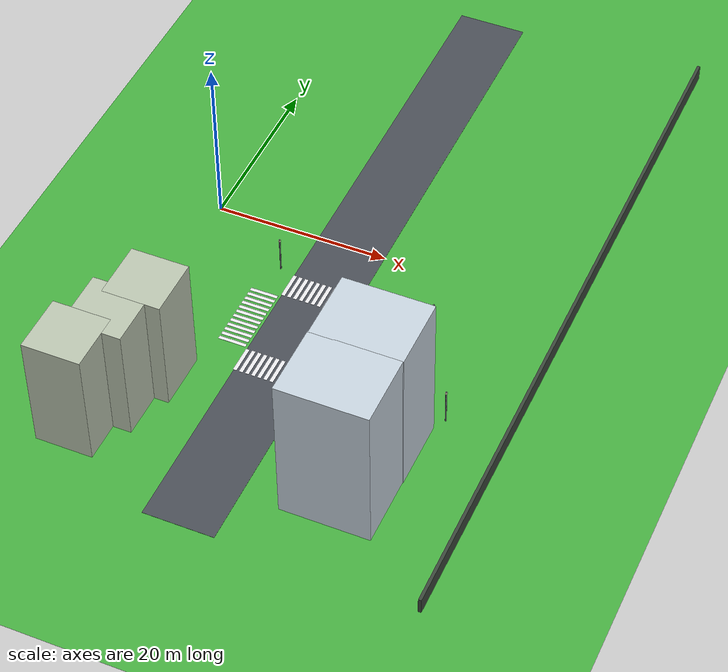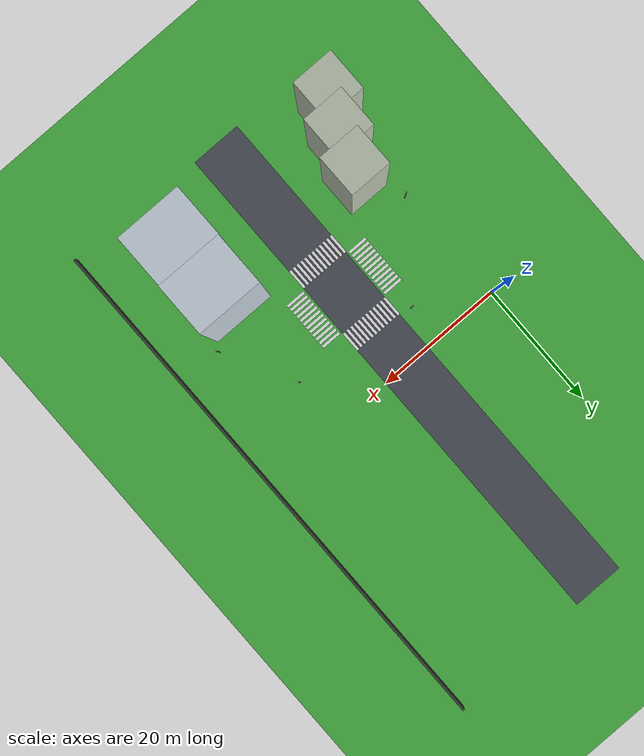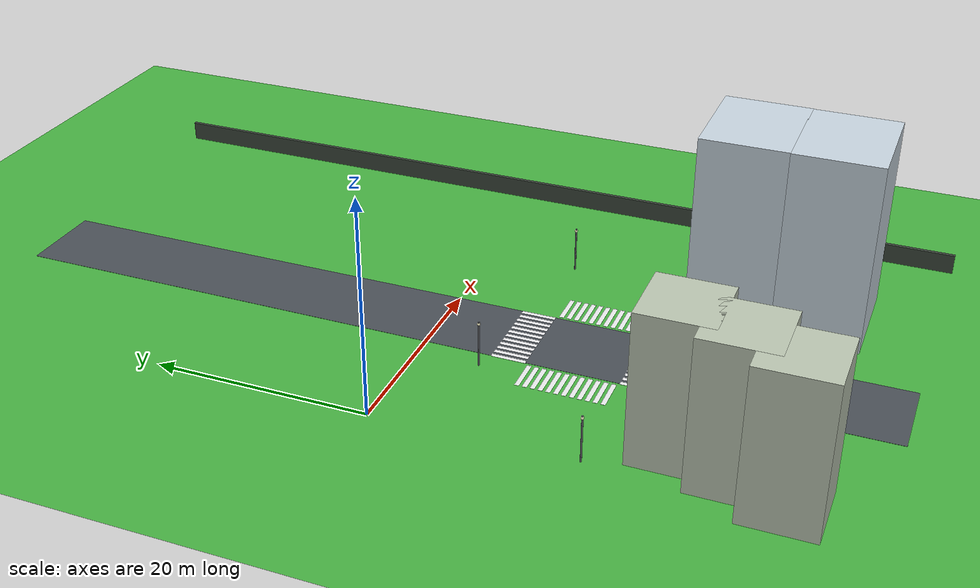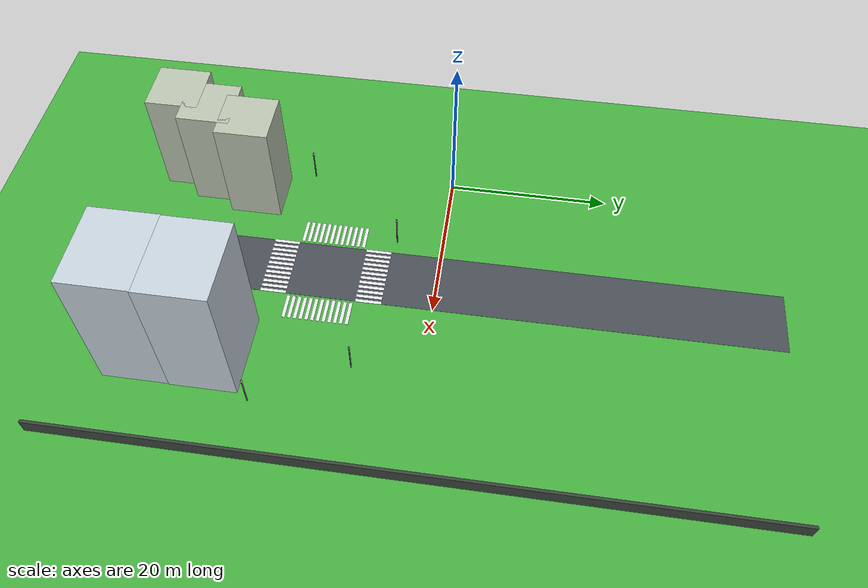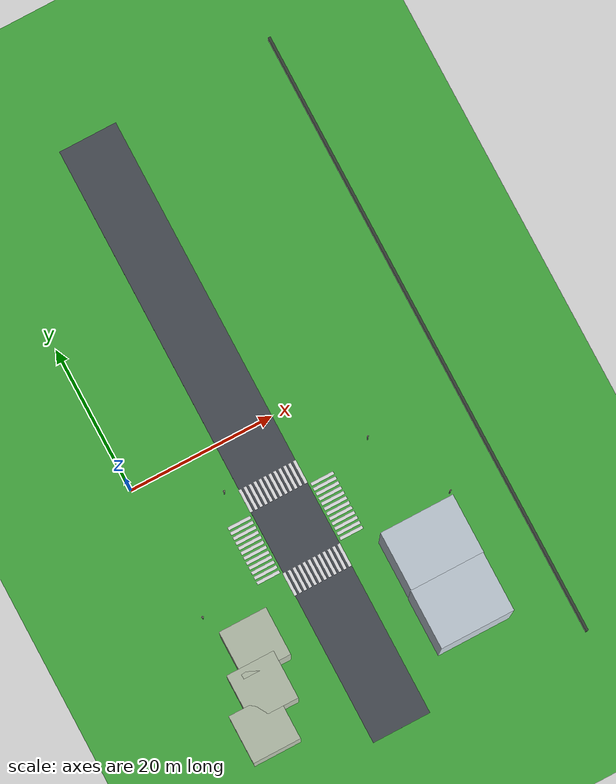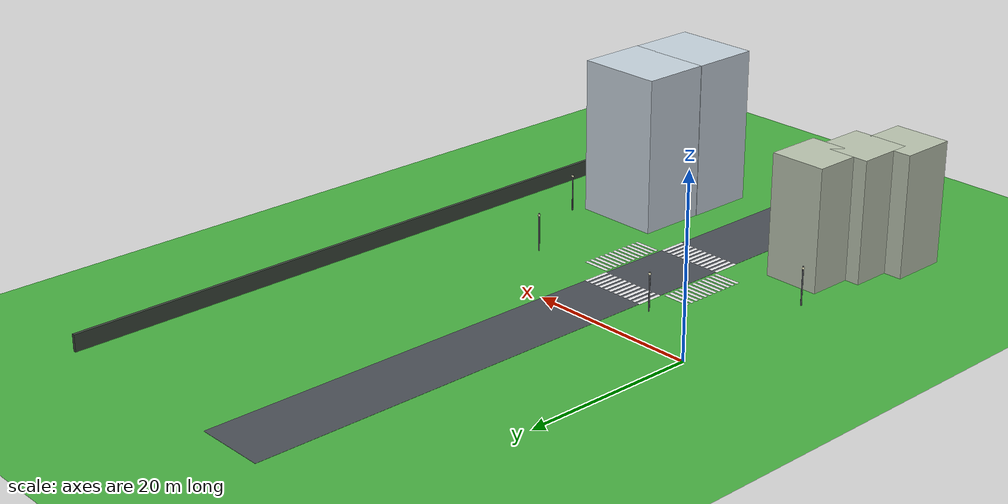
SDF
<sdf version="1.10">
 <world name="city_second">
  <model name="ground_plane">
   <static>true</static>
   <link name="link">
    <collision name="collision">
     <geometry><plane><normal>0 0 1</normal><size>300 300</size></plane></geometry>
    </collision>
    <visual name="visual">
     <geometry><plane><normal>0 0 1</normal><size>300 300</size></plane></geometry>
     <material>
      <ambient>0.280000001 0.689999998 0.25999999 1</ambient>
      <diffuse>0.280000001 0.689999998 0.25999999 1</diffuse>
      <specular>0.0299999993 0.0299999993 0.0299999993 1</specular>
     </material>
    </visual>
    <inertial>
     <mass>1</mass>
     <inertia><ixx>1</ixx><ixy>0</ixy><ixz>0</ixz><iyy>1</iyy><iyz>0</iyz><izz>1</izz></inertia>
    </inertial>
   </link>
  </model>
  <model name="road_v_2">
   <static>true</static>
   <pose>16 0 0.01 0 0 0</pose>
   <link name="link">
    <collision name="collision"><geometry><box><size>8 84 0.02</size></box></geometry></collision>
    <visual name="visual">
     <geometry><box><size>8 84 0.02</size></box></geometry>
     <material>
      <ambient>0.289999992 0.310000002 0.340000004 1</ambient>
      <diffuse>0.289999992 0.310000002 0.340000004 1</diffuse>
      <specular>0.0299999993 0.0299999993 0.0299999993 1</specular>
     </material>
    </visual>
    <inertial>
     <mass>1</mass>
     <inertia><ixx>1</ixx><ixy>0</ixy><ixz>0</ixz><iyy>1</iyy><iyz>0</iyz><izz>1</izz></inertia>
    </inertial>
   </link>
  </model>
  <model name="house_1_2">
   <static>true</static>
   <pose>4.5999999999999996 -24.800000000000001 7 0 0 0</pose>
   <link name="link">
    <collision name="collision"><geometry><box><size>6.5 6.5 14</size></box></geometry></collision>
    <visual name="visual">
     <geometry><box><size>6.5 6.5 14</size></box></geometry>
     <material>
      <ambient>0.730000019 0.769999981 0.689999998 1</ambient>
      <diffuse>0.730000019 0.769999981 0.689999998 1</diffuse>
      <specular>0.0299999993 0.0299999993 0.0299999993 1</specular>
     </material>
    </visual>
    <inertial>
     <mass>1</mass>
     <inertia><ixx>1</ixx><ixy>0</ixy><ixz>0</ixz><iyy>1</iyy><iyz>0</iyz><izz>1</izz></inertia>
    </inertial>
   </link>
  </model>
  <model name="house_1_3">
   <static>true</static>
   <pose>29.300000000000001 -24.300000000000001 9 0 0 0</pose>
   <link name="link">
    <collision name="collision"><geometry><box><size>10 8 18</size></box></geometry></collision>
    <visual name="visual">
     <geometry><box><size>10 8 18</size></box></geometry>
     <material>
      <ambient>0.779999971 0.829999983 0.870000005 1</ambient>
      <diffuse>0.779999971 0.829999983 0.870000005 1</diffuse>
      <specular>0.0299999993 0.0299999993 0.0299999993 1</specular>
     </material>
    </visual>
    <inertial>
     <mass>1</mass>
     <inertia><ixx>1</ixx><ixy>0</ixy><ixz>0</ixz><iyy>1</iyy><iyz>0</iyz><izz>1</izz></inertia>
    </inertial>
   </link>
  </model>
  <model name="fence_east">
   <static>true</static>
   <pose>42 0 0.94999999999999996 0 0 0</pose>
   <link name="link">
    <collision name="collision">
     <geometry><box><size>0.34999999999999998 84.5 1.8999999999999999</size></box></geometry>
    </collision>
    <visual name="visual">
     <geometry><box><size>0.34999999999999998 84.5 1.8999999999999999</size></box></geometry>
     <material>
      <ambient>0.230000004 0.270000011 0.230000004 1</ambient>
      <diffuse>0.230000004 0.270000011 0.230000004 1</diffuse>
      <specular>0.0299999993 0.0299999993 0.0299999993 1</specular>
     </material>
    </visual>
    <inertial>
     <mass>1</mass>
     <inertia><ixx>1</ixx><ixy>0</ixy><ixz>0</ixz><iyy>1</iyy><iyz>0</iyz><izz>1</izz></inertia>
    </inertial>
   </link>
  </model>
  <model name="house_1_2_1">
   <static>true</static>
   <pose>2.9261595536171914 -29.924278257436008 7 0 0 0</pose>
   <link name="link">
    <collision name="collision"><geometry><box><size>6.5 6.5 14</size></box></geometry></collision>
    <visual name="visual">
     <geometry><box><size>6.5 6.5 14</size></box></geometry>
     <material>
      <ambient>0.730000019 0.769999981 0.689999998 1</ambient>
      <diffuse>0.730000019 0.769999981 0.689999998 1</diffuse>
      <specular>0.0299999993 0.0299999993 0.0299999993 1</specular>
     </material>
    </visual>
    <inertial>
     <mass>1</mass>
     <inertia><ixx>1</ixx><ixy>0</ixy><ixz>0</ixz><iyy>1</iyy><iyz>0</iyz><izz>1</izz></inertia>
    </inertial>
   </link>
  </model>
  <model name="house_1_2_2">
   <static>true</static>
   <pose>0.84303424555227124 -34.43064882815753 7 0 0 0</pose>
   <link name="link">
    <collision name="collision"><geometry><box><size>6.5 6.5 14</size></box></geometry></collision>
    <visual name="visual">
     <geometry><box><size>6.5 6.5 14</size></box></geometry>
     <material>
      <ambient>0.730000019 0.769999981 0.689999998 1</ambient>
      <diffuse>0.730000019 0.769999981 0.689999998 1</diffuse>
      <specular>0.0299999993 0.0299999993 0.0299999993 1</specular>
     </material>
    </visual>
    <inertial>
     <mass>1</mass>
     <inertia><ixx>1</ixx><ixy>0</ixy><ixz>0</ixz><iyy>1</iyy><iyz>0</iyz><izz>1</izz></inertia>
    </inertial>
   </link>
  </model>
  <model name="house_1_3_1">
   <static>true</static>
   <pose>29.230521897791199 -32.22482438991532 9 0 0 0</pose>
   <link name="link">
    <collision name="collision"><geometry><box><size>10 8 18</size></box></geometry></collision>
    <visual name="visual">
     <geometry><box><size>10 8 18</size></box></geometry>
     <material>
      <ambient>0.779999971 0.829999983 0.870000005 1</ambient>
      <diffuse>0.779999971 0.829999983 0.870000005 1</diffuse>
      <specular>0.0299999993 0.0299999993 0.0299999993 1</specular>
     </material>
    </visual>
    <inertial>
     <mass>1</mass>
     <inertia><ixx>1</ixx><ixy>0</ixy><ixz>0</ixz><iyy>1</iyy><iyz>0</iyz><izz>1</izz></inertia>
    </inertial>
   </link>
  </model>
  <model name="crosswalk_v_2_1_east_5_3">
   <static>true</static>
   <pose>10.108439880763857 -13.809359029211334 0.017000000923871994 0 0 0</pose>
   <link name="stripe_1">
    <collision name="collision">
     <geometry><box><size>3.2000000000000002 0.41999999999999998 0.01</size></box></geometry>
    </collision>
    <visual name="visual">
     <geometry><box><size>3.2000000000000002 0.41999999999999998 0.01</size></box></geometry>
     <material>
      <ambient>0.920000017 0.920000017 0.930000007 1</ambient>
      <diffuse>0.920000017 0.920000017 0.930000007 1</diffuse>
      <specular>0.0299999993 0.0299999993 0.0299999993 1</specular>
     </material>
    </visual>
    <pose>0 -3.8500000000000001 0 0 0 0</pose>
    <inertial>
     <mass>1</mass>
     <inertia><ixx>1</ixx><ixy>0</ixy><ixz>0</ixz><iyy>1</iyy><iyz>0</iyz><izz>1</izz></inertia>
    </inertial>
   </link>
   <link name="stripe_2">
    <collision name="collision">
     <geometry><box><size>3.2000000000000002 0.41999999999999998 0.01</size></box></geometry>
    </collision>
    <visual name="visual">
     <geometry><box><size>3.2000000000000002 0.41999999999999998 0.01</size></box></geometry>
     <material>
      <ambient>0.920000017 0.920000017 0.930000007 1</ambient>
      <diffuse>0.920000017 0.920000017 0.930000007 1</diffuse>
      <specular>0.0299999993 0.0299999993 0.0299999993 1</specular>
     </material>
    </visual>
    <pose>0 -3.1500000000000004 0 0 0 0</pose>
    <inertial>
     <mass>1</mass>
     <inertia><ixx>1</ixx><ixy>0</ixy><ixz>0</ixz><iyy>1</iyy><iyz>0</iyz><izz>1</izz></inertia>
    </inertial>
   </link>
   <link name="stripe_3">
    <collision name="collision">
     <geometry><box><size>3.2000000000000002 0.41999999999999998 0.01</size></box></geometry>
    </collision>
    <visual name="visual">
     <geometry><box><size>3.2000000000000002 0.41999999999999998 0.01</size></box></geometry>
     <material>
      <ambient>0.920000017 0.920000017 0.930000007 1</ambient>
      <diffuse>0.920000017 0.920000017 0.930000007 1</diffuse>
      <specular>0.0299999993 0.0299999993 0.0299999993 1</specular>
     </material>
    </visual>
    <pose>0 -2.4499999999999975 0 0 0 0</pose>
    <inertial>
     <mass>1</mass>
     <inertia><ixx>1</ixx><ixy>0</ixy><ixz>0</ixz><iyy>1</iyy><iyz>0</iyz><izz>1</izz></inertia>
    </inertial>
   </link>
   <link name="stripe_4">
    <collision name="collision">
     <geometry><box><size>3.2000000000000002 0.41999999999999998 0.01</size></box></geometry>
    </collision>
    <visual name="visual">
     <geometry><box><size>3.2000000000000002 0.41999999999999998 0.01</size></box></geometry>
     <material>
      <ambient>0.920000017 0.920000017 0.930000007 1</ambient>
      <diffuse>0.920000017 0.920000017 0.930000007 1</diffuse>
      <specular>0.0299999993 0.0299999993 0.0299999993 1</specular>
     </material>
    </visual>
    <pose>0 -1.75 0 0 0 0</pose>
    <inertial>
     <mass>1</mass>
     <inertia><ixx>1</ixx><ixy>0</ixy><ixz>0</ixz><iyy>1</iyy><iyz>0</iyz><izz>1</izz></inertia>
    </inertial>
   </link>
   <link name="stripe_5">
    <collision name="collision">
     <geometry><box><size>3.2000000000000002 0.41999999999999998 0.01</size></box></geometry>
    </collision>
    <visual name="visual">
     <geometry><box><size>3.2000000000000002 0.41999999999999998 0.01</size></box></geometry>
     <material>
      <ambient>0.920000017 0.920000017 0.930000007 1</ambient>
      <diffuse>0.920000017 0.920000017 0.930000007 1</diffuse>
      <specular>0.0299999993 0.0299999993 0.0299999993 1</specular>
     </material>
    </visual>
    <pose>0 -1.0500000000000007 0 0 0 0</pose>
    <inertial>
     <mass>1</mass>
     <inertia><ixx>1</ixx><ixy>0</ixy><ixz>0</ixz><iyy>1</iyy><iyz>0</iyz><izz>1</izz></inertia>
    </inertial>
   </link>
   <link name="stripe_6">
    <collision name="collision">
     <geometry><box><size>3.2000000000000002 0.41999999999999998 0.01</size></box></geometry>
    </collision>
    <visual name="visual">
     <geometry><box><size>3.2000000000000002 0.41999999999999998 0.01</size></box></geometry>
     <material>
      <ambient>0.920000017 0.920000017 0.930000007 1</ambient>
      <diffuse>0.920000017 0.920000017 0.930000007 1</diffuse>
      <specular>0.0299999993 0.0299999993 0.0299999993 1</specular>
     </material>
    </visual>
    <pose>0 -0.34999999999999964 0 0 0 0</pose>
    <inertial>
     <mass>1</mass>
     <inertia><ixx>1</ixx><ixy>0</ixy><ixz>0</ixz><iyy>1</iyy><iyz>0</iyz><izz>1</izz></inertia>
    </inertial>
   </link>
   <link name="stripe_7">
    <collision name="collision">
     <geometry><box><size>3.2000000000000002 0.41999999999999998 0.01</size></box></geometry>
    </collision>
    <visual name="visual">
     <geometry><box><size>3.2000000000000002 0.41999999999999998 0.01</size></box></geometry>
     <material>
      <ambient>0.920000017 0.920000017 0.930000007 1</ambient>
      <diffuse>0.920000017 0.920000017 0.930000007 1</diffuse>
      <specular>0.0299999993 0.0299999993 0.0299999993 1</specular>
     </material>
    </visual>
    <pose>0 0.35000000000000142 0 0 0 0</pose>
    <inertial>
     <mass>1</mass>
     <inertia><ixx>1</ixx><ixy>0</ixy><ixz>0</ixz><iyy>1</iyy><iyz>0</iyz><izz>1</izz></inertia>
    </inertial>
   </link>
   <link name="stripe_8">
    <collision name="collision">
     <geometry><box><size>3.2000000000000002 0.41999999999999998 0.01</size></box></geometry>
    </collision>
    <visual name="visual">
     <geometry><box><size>3.2000000000000002 0.41999999999999998 0.01</size></box></geometry>
     <material>
      <ambient>0.920000017 0.920000017 0.930000007 1</ambient>
      <diffuse>0.920000017 0.920000017 0.930000007 1</diffuse>
      <specular>0.0299999993 0.0299999993 0.0299999993 1</specular>
     </material>
    </visual>
    <pose>0 1.0500000000000007 0 0 0 0</pose>
    <inertial>
     <mass>1</mass>
     <inertia><ixx>1</ixx><ixy>0</ixy><ixz>0</ixz><iyy>1</iyy><iyz>0</iyz><izz>1</izz></inertia>
    </inertial>
   </link>
   <link name="stripe_9">
    <collision name="collision">
     <geometry><box><size>3.2000000000000002 0.41999999999999998 0.01</size></box></geometry>
    </collision>
    <visual name="visual">
     <geometry><box><size>3.2000000000000002 0.41999999999999998 0.01</size></box></geometry>
     <material>
      <ambient>0.920000017 0.920000017 0.930000007 1</ambient>
      <diffuse>0.920000017 0.920000017 0.930000007 1</diffuse>
      <specular>0.0299999993 0.0299999993 0.0299999993 1</specular>
     </material>
    </visual>
    <pose>0 1.75 0 0 0 0</pose>
    <inertial>
     <mass>1</mass>
     <inertia><ixx>1</ixx><ixy>0</ixy><ixz>0</ixz><iyy>1</iyy><iyz>0</iyz><izz>1</izz></inertia>
    </inertial>
   </link>
   <link name="stripe_10">
    <collision name="collision">
     <geometry><box><size>3.2000000000000002 0.41999999999999998 0.01</size></box></geometry>
    </collision>
    <visual name="visual">
     <geometry><box><size>3.2000000000000002 0.41999999999999998 0.01</size></box></geometry>
     <material>
      <ambient>0.920000017 0.920000017 0.930000007 1</ambient>
      <diffuse>0.920000017 0.920000017 0.930000007 1</diffuse>
      <specular>0.0299999993 0.0299999993 0.0299999993 1</specular>
     </material>
    </visual>
    <pose>0 2.4499999999999993 0 0 0 0</pose>
    <inertial>
     <mass>1</mass>
     <inertia><ixx>1</ixx><ixy>0</ixy><ixz>0</ixz><iyy>1</iyy><iyz>0</iyz><izz>1</izz></inertia>
    </inertial>
   </link>
   <link name="stripe_11">
    <collision name="collision">
     <geometry><box><size>3.2000000000000002 0.41999999999999998 0.01</size></box></geometry>
    </collision>
    <visual name="visual">
     <geometry><box><size>3.2000000000000002 0.41999999999999998 0.01</size></box></geometry>
     <material>
      <ambient>0.920000017 0.920000017 0.930000007 1</ambient>
      <diffuse>0.920000017 0.920000017 0.930000007 1</diffuse>
      <specular>0.0299999993 0.0299999993 0.0299999993 1</specular>
     </material>
    </visual>
    <pose>0 3.1499999999999986 0 0 0 0</pose>
    <inertial>
     <mass>1</mass>
     <inertia><ixx>1</ixx><ixy>0</ixy><ixz>0</ixz><iyy>1</iyy><iyz>0</iyz><izz>1</izz></inertia>
    </inertial>
   </link>
   <link name="stripe_12">
    <collision name="collision">
     <geometry><box><size>3.2000000000000002 0.41999999999999998 0.01</size></box></geometry>
    </collision>
    <visual name="visual">
     <geometry><box><size>3.2000000000000002 0.41999999999999998 0.01</size></box></geometry>
     <material>
      <ambient>0.920000017 0.920000017 0.930000007 1</ambient>
      <diffuse>0.920000017 0.920000017 0.930000007 1</diffuse>
      <specular>0.0299999993 0.0299999993 0.0299999993 1</specular>
     </material>
    </visual>
    <pose>0 3.8500000000000014 0 0 0 0</pose>
    <inertial>
     <mass>1</mass>
     <inertia><ixx>1</ixx><ixy>0</ixy><ixz>0</ixz><iyy>1</iyy><iyz>0</iyz><izz>1</izz></inertia>
    </inertial>
   </link>
  </model>
  <model name="crosswalk_v_2_1_east_5_4">
   <static>true</static>
   <pose>21.874786252909118 -13.746202799396395 0.017000000923871994 0 0 0</pose>
   <link name="stripe_1">
    <collision name="collision">
     <geometry><box><size>3.2000000000000002 0.41999999999999998 0.01</size></box></geometry>
    </collision>
    <visual name="visual">
     <geometry><box><size>3.2000000000000002 0.41999999999999998 0.01</size></box></geometry>
     <material>
      <ambient>0.920000017 0.920000017 0.930000007 1</ambient>
      <diffuse>0.920000017 0.920000017 0.930000007 1</diffuse>
      <specular>0.0299999993 0.0299999993 0.0299999993 1</specular>
     </material>
    </visual>
    <pose>0 -3.8500000000000001 0 0 0 0</pose>
    <inertial>
     <mass>1</mass>
     <inertia><ixx>1</ixx><ixy>0</ixy><ixz>0</ixz><iyy>1</iyy><iyz>0</iyz><izz>1</izz></inertia>
    </inertial>
   </link>
   <link name="stripe_2">
    <collision name="collision">
     <geometry><box><size>3.2000000000000002 0.41999999999999998 0.01</size></box></geometry>
    </collision>
    <visual name="visual">
     <geometry><box><size>3.2000000000000002 0.41999999999999998 0.01</size></box></geometry>
     <material>
      <ambient>0.920000017 0.920000017 0.930000007 1</ambient>
      <diffuse>0.920000017 0.920000017 0.930000007 1</diffuse>
      <specular>0.0299999993 0.0299999993 0.0299999993 1</specular>
     </material>
    </visual>
    <pose>0 -3.1499999999999968 0 0 0 0</pose>
    <inertial>
     <mass>1</mass>
     <inertia><ixx>1</ixx><ixy>0</ixy><ixz>0</ixz><iyy>1</iyy><iyz>0</iyz><izz>1</izz></inertia>
    </inertial>
   </link>
   <link name="stripe_3">
    <collision name="collision">
     <geometry><box><size>3.2000000000000002 0.41999999999999998 0.01</size></box></geometry>
    </collision>
    <visual name="visual">
     <geometry><box><size>3.2000000000000002 0.41999999999999998 0.01</size></box></geometry>
     <material>
      <ambient>0.920000017 0.920000017 0.930000007 1</ambient>
      <diffuse>0.920000017 0.920000017 0.930000007 1</diffuse>
      <specular>0.0299999993 0.0299999993 0.0299999993 1</specular>
     </material>
    </visual>
    <pose>0 -2.4499999999999975 0 0 0 0</pose>
    <inertial>
     <mass>1</mass>
     <inertia><ixx>1</ixx><ixy>0</ixy><ixz>0</ixz><iyy>1</iyy><iyz>0</iyz><izz>1</izz></inertia>
    </inertial>
   </link>
   <link name="stripe_4">
    <collision name="collision">
     <geometry><box><size>3.2000000000000002 0.41999999999999998 0.01</size></box></geometry>
    </collision>
    <visual name="visual">
     <geometry><box><size>3.2000000000000002 0.41999999999999998 0.01</size></box></geometry>
     <material>
      <ambient>0.920000017 0.920000017 0.930000007 1</ambient>
      <diffuse>0.920000017 0.920000017 0.930000007 1</diffuse>
      <specular>0.0299999993 0.0299999993 0.0299999993 1</specular>
     </material>
    </visual>
    <pose>0 -1.7499999999999982 0 0 0 0</pose>
    <inertial>
     <mass>1</mass>
     <inertia><ixx>1</ixx><ixy>0</ixy><ixz>0</ixz><iyy>1</iyy><iyz>0</iyz><izz>1</izz></inertia>
    </inertial>
   </link>
   <link name="stripe_5">
    <collision name="collision">
     <geometry><box><size>3.2000000000000002 0.41999999999999998 0.01</size></box></geometry>
    </collision>
    <visual name="visual">
     <geometry><box><size>3.2000000000000002 0.41999999999999998 0.01</size></box></geometry>
     <material>
      <ambient>0.920000017 0.920000017 0.930000007 1</ambient>
      <diffuse>0.920000017 0.920000017 0.930000007 1</diffuse>
      <specular>0.0299999993 0.0299999993 0.0299999993 1</specular>
     </material>
    </visual>
    <pose>0 -1.0499999999999989 0 0 0 0</pose>
    <inertial>
     <mass>1</mass>
     <inertia><ixx>1</ixx><ixy>0</ixy><ixz>0</ixz><iyy>1</iyy><iyz>0</iyz><izz>1</izz></inertia>
    </inertial>
   </link>
   <link name="stripe_6">
    <collision name="collision">
     <geometry><box><size>3.2000000000000002 0.41999999999999998 0.01</size></box></geometry>
    </collision>
    <visual name="visual">
     <geometry><box><size>3.2000000000000002 0.41999999999999998 0.01</size></box></geometry>
     <material>
      <ambient>0.920000017 0.920000017 0.930000007 1</ambient>
      <diffuse>0.920000017 0.920000017 0.930000007 1</diffuse>
      <specular>0.0299999993 0.0299999993 0.0299999993 1</specular>
     </material>
    </visual>
    <pose>0 -0.34999999999999787 0 0 0 0</pose>
    <inertial>
     <mass>1</mass>
     <inertia><ixx>1</ixx><ixy>0</ixy><ixz>0</ixz><iyy>1</iyy><iyz>0</iyz><izz>1</izz></inertia>
    </inertial>
   </link>
   <link name="stripe_7">
    <collision name="collision">
     <geometry><box><size>3.2000000000000002 0.41999999999999998 0.01</size></box></geometry>
    </collision>
    <visual name="visual">
     <geometry><box><size>3.2000000000000002 0.41999999999999998 0.01</size></box></geometry>
     <material>
      <ambient>0.920000017 0.920000017 0.930000007 1</ambient>
      <diffuse>0.920000017 0.920000017 0.930000007 1</diffuse>
      <specular>0.0299999993 0.0299999993 0.0299999993 1</specular>
     </material>
    </visual>
    <pose>0 0.3500000000000032 0 0 0 0</pose>
    <inertial>
     <mass>1</mass>
     <inertia><ixx>1</ixx><ixy>0</ixy><ixz>0</ixz><iyy>1</iyy><iyz>0</iyz><izz>1</izz></inertia>
    </inertial>
   </link>
   <link name="stripe_8">
    <collision name="collision">
     <geometry><box><size>3.2000000000000002 0.41999999999999998 0.01</size></box></geometry>
    </collision>
    <visual name="visual">
     <geometry><box><size>3.2000000000000002 0.41999999999999998 0.01</size></box></geometry>
     <material>
      <ambient>0.920000017 0.920000017 0.930000007 1</ambient>
      <diffuse>0.920000017 0.920000017 0.930000007 1</diffuse>
      <specular>0.0299999993 0.0299999993 0.0299999993 1</specular>
     </material>
    </visual>
    <pose>0 1.0500000000000025 0 0 0 0</pose>
    <inertial>
     <mass>1</mass>
     <inertia><ixx>1</ixx><ixy>0</ixy><ixz>0</ixz><iyy>1</iyy><iyz>0</iyz><izz>1</izz></inertia>
    </inertial>
   </link>
   <link name="stripe_9">
    <collision name="collision">
     <geometry><box><size>3.2000000000000002 0.41999999999999998 0.01</size></box></geometry>
    </collision>
    <visual name="visual">
     <geometry><box><size>3.2000000000000002 0.41999999999999998 0.01</size></box></geometry>
     <material>
      <ambient>0.920000017 0.920000017 0.930000007 1</ambient>
      <diffuse>0.920000017 0.920000017 0.930000007 1</diffuse>
      <specular>0.0299999993 0.0299999993 0.0299999993 1</specular>
     </material>
    </visual>
    <pose>0 1.7500000000000018 0 0 0 0</pose>
    <inertial>
     <mass>1</mass>
     <inertia><ixx>1</ixx><ixy>0</ixy><ixz>0</ixz><iyy>1</iyy><iyz>0</iyz><izz>1</izz></inertia>
    </inertial>
   </link>
   <link name="stripe_10">
    <collision name="collision">
     <geometry><box><size>3.2000000000000002 0.41999999999999998 0.01</size></box></geometry>
    </collision>
    <visual name="visual">
     <geometry><box><size>3.2000000000000002 0.41999999999999998 0.01</size></box></geometry>
     <material>
      <ambient>0.920000017 0.920000017 0.930000007 1</ambient>
      <diffuse>0.920000017 0.920000017 0.930000007 1</diffuse>
      <specular>0.0299999993 0.0299999993 0.0299999993 1</specular>
     </material>
    </visual>
    <pose>0 2.4500000000000011 0 0 0 0</pose>
    <inertial>
     <mass>1</mass>
     <inertia><ixx>1</ixx><ixy>0</ixy><ixz>0</ixz><iyy>1</iyy><iyz>0</iyz><izz>1</izz></inertia>
    </inertial>
   </link>
   <link name="stripe_11">
    <collision name="collision">
     <geometry><box><size>3.2000000000000002 0.41999999999999998 0.01</size></box></geometry>
    </collision>
    <visual name="visual">
     <geometry><box><size>3.2000000000000002 0.41999999999999998 0.01</size></box></geometry>
     <material>
      <ambient>0.920000017 0.920000017 0.930000007 1</ambient>
      <diffuse>0.920000017 0.920000017 0.930000007 1</diffuse>
      <specular>0.0299999993 0.0299999993 0.0299999993 1</specular>
     </material>
    </visual>
    <pose>0 3.1500000000000004 0 0 0 0</pose>
    <inertial>
     <mass>1</mass>
     <inertia><ixx>1</ixx><ixy>0</ixy><ixz>0</ixz><iyy>1</iyy><iyz>0</iyz><izz>1</izz></inertia>
    </inertial>
   </link>
   <link name="stripe_12">
    <collision name="collision">
     <geometry><box><size>3.2000000000000002 0.41999999999999998 0.01</size></box></geometry>
    </collision>
    <visual name="visual">
     <geometry><box><size>3.2000000000000002 0.41999999999999998 0.01</size></box></geometry>
     <material>
      <ambient>0.920000017 0.920000017 0.930000007 1</ambient>
      <diffuse>0.920000017 0.920000017 0.930000007 1</diffuse>
      <specular>0.0299999993 0.0299999993 0.0299999993 1</specular>
     </material>
    </visual>
    <pose>0 3.8500000000000032 0 0 0 0</pose>
    <inertial>
     <mass>1</mass>
     <inertia><ixx>1</ixx><ixy>0</ixy><ixz>0</ixz><iyy>1</iyy><iyz>0</iyz><izz>1</izz></inertia>
    </inertial>
   </link>
  </model>
  <model name="crosswalk_h_1_1_south_7_1">
   <static>true</static>
   <pose>15.975752501838592 -7.8596275303993677 0.017000000923871994 0 0 0</pose>
   <link name="stripe_1">
    <collision name="collision">
     <geometry><box><size>0.41999999999999998 3.2000000000000002 0.01</size></box></geometry>
    </collision>
    <visual name="visual">
     <geometry><box><size>0.41999999999999998 3.2000000000000002 0.01</size></box></geometry>
     <material>
      <ambient>0.920000017 0.920000017 0.930000007 1</ambient>
      <diffuse>0.920000017 0.920000017 0.930000007 1</diffuse>
      <specular>0.0299999993 0.0299999993 0.0299999993 1</specular>
     </material>
    </visual>
    <pose>-3.8500000000000001 0 0 0 0 0</pose>
    <inertial>
     <mass>1</mass>
     <inertia><ixx>1</ixx><ixy>0</ixy><ixz>0</ixz><iyy>1</iyy><iyz>0</iyz><izz>1</izz></inertia>
    </inertial>
   </link>
   <link name="stripe_2">
    <collision name="collision">
     <geometry><box><size>0.41999999999999998 3.2000000000000002 0.01</size></box></geometry>
    </collision>
    <visual name="visual">
     <geometry><box><size>0.41999999999999998 3.2000000000000002 0.01</size></box></geometry>
     <material>
      <ambient>0.920000017 0.920000017 0.930000007 1</ambient>
      <diffuse>0.920000017 0.920000017 0.930000007 1</diffuse>
      <specular>0.0299999993 0.0299999993 0.0299999993 1</specular>
     </material>
    </visual>
    <pose>-3.1500000000000004 0 0 0 0 0</pose>
    <inertial>
     <mass>1</mass>
     <inertia><ixx>1</ixx><ixy>0</ixy><ixz>0</ixz><iyy>1</iyy><iyz>0</iyz><izz>1</izz></inertia>
    </inertial>
   </link>
   <link name="stripe_3">
    <collision name="collision">
     <geometry><box><size>0.41999999999999998 3.2000000000000002 0.01</size></box></geometry>
    </collision>
    <visual name="visual">
     <geometry><box><size>0.41999999999999998 3.2000000000000002 0.01</size></box></geometry>
     <material>
      <ambient>0.920000017 0.920000017 0.930000007 1</ambient>
      <diffuse>0.920000017 0.920000017 0.930000007 1</diffuse>
      <specular>0.0299999993 0.0299999993 0.0299999993 1</specular>
     </material>
    </visual>
    <pose>-2.4499999999999993 0 0 0 0 0</pose>
    <inertial>
     <mass>1</mass>
     <inertia><ixx>1</ixx><ixy>0</ixy><ixz>0</ixz><iyy>1</iyy><iyz>0</iyz><izz>1</izz></inertia>
    </inertial>
   </link>
   <link name="stripe_4">
    <collision name="collision">
     <geometry><box><size>0.41999999999999998 3.2000000000000002 0.01</size></box></geometry>
    </collision>
    <visual name="visual">
     <geometry><box><size>0.41999999999999998 3.2000000000000002 0.01</size></box></geometry>
     <material>
      <ambient>0.920000017 0.920000017 0.930000007 1</ambient>
      <diffuse>0.920000017 0.920000017 0.930000007 1</diffuse>
      <specular>0.0299999993 0.0299999993 0.0299999993 1</specular>
     </material>
    </visual>
    <pose>-1.75 0 0 0 0 0</pose>
    <inertial>
     <mass>1</mass>
     <inertia><ixx>1</ixx><ixy>0</ixy><ixz>0</ixz><iyy>1</iyy><iyz>0</iyz><izz>1</izz></inertia>
    </inertial>
   </link>
   <link name="stripe_5">
    <collision name="collision">
     <geometry><box><size>0.41999999999999998 3.2000000000000002 0.01</size></box></geometry>
    </collision>
    <visual name="visual">
     <geometry><box><size>0.41999999999999998 3.2000000000000002 0.01</size></box></geometry>
     <material>
      <ambient>0.920000017 0.920000017 0.930000007 1</ambient>
      <diffuse>0.920000017 0.920000017 0.930000007 1</diffuse>
      <specular>0.0299999993 0.0299999993 0.0299999993 1</specular>
     </material>
    </visual>
    <pose>-1.0500000000000007 0 0 0 0 0</pose>
    <inertial>
     <mass>1</mass>
     <inertia><ixx>1</ixx><ixy>0</ixy><ixz>0</ixz><iyy>1</iyy><iyz>0</iyz><izz>1</izz></inertia>
    </inertial>
   </link>
   <link name="stripe_6">
    <collision name="collision">
     <geometry><box><size>0.41999999999999998 3.2000000000000002 0.01</size></box></geometry>
    </collision>
    <visual name="visual">
     <geometry><box><size>0.41999999999999998 3.2000000000000002 0.01</size></box></geometry>
     <material>
      <ambient>0.920000017 0.920000017 0.930000007 1</ambient>
      <diffuse>0.920000017 0.920000017 0.930000007 1</diffuse>
      <specular>0.0299999993 0.0299999993 0.0299999993 1</specular>
     </material>
    </visual>
    <pose>-0.34999999999999964 0 0 0 0 0</pose>
    <inertial>
     <mass>1</mass>
     <inertia><ixx>1</ixx><ixy>0</ixy><ixz>0</ixz><iyy>1</iyy><iyz>0</iyz><izz>1</izz></inertia>
    </inertial>
   </link>
   <link name="stripe_7">
    <collision name="collision">
     <geometry><box><size>0.41999999999999998 3.2000000000000002 0.01</size></box></geometry>
    </collision>
    <visual name="visual">
     <geometry><box><size>0.41999999999999998 3.2000000000000002 0.01</size></box></geometry>
     <material>
      <ambient>0.920000017 0.920000017 0.930000007 1</ambient>
      <diffuse>0.920000017 0.920000017 0.930000007 1</diffuse>
      <specular>0.0299999993 0.0299999993 0.0299999993 1</specular>
     </material>
    </visual>
    <pose>0.35000000000000142 0 0 0 0 0</pose>
    <inertial>
     <mass>1</mass>
     <inertia><ixx>1</ixx><ixy>0</ixy><ixz>0</ixz><iyy>1</iyy><iyz>0</iyz><izz>1</izz></inertia>
    </inertial>
   </link>
   <link name="stripe_8">
    <collision name="collision">
     <geometry><box><size>0.41999999999999998 3.2000000000000002 0.01</size></box></geometry>
    </collision>
    <visual name="visual">
     <geometry><box><size>0.41999999999999998 3.2000000000000002 0.01</size></box></geometry>
     <material>
      <ambient>0.920000017 0.920000017 0.930000007 1</ambient>
      <diffuse>0.920000017 0.920000017 0.930000007 1</diffuse>
      <specular>0.0299999993 0.0299999993 0.0299999993 1</specular>
     </material>
    </visual>
    <pose>1.0500000000000007 0 0 0 0 0</pose>
    <inertial>
     <mass>1</mass>
     <inertia><ixx>1</ixx><ixy>0</ixy><ixz>0</ixz><iyy>1</iyy><iyz>0</iyz><izz>1</izz></inertia>
    </inertial>
   </link>
   <link name="stripe_9">
    <collision name="collision">
     <geometry><box><size>0.41999999999999998 3.2000000000000002 0.01</size></box></geometry>
    </collision>
    <visual name="visual">
     <geometry><box><size>0.41999999999999998 3.2000000000000002 0.01</size></box></geometry>
     <material>
      <ambient>0.920000017 0.920000017 0.930000007 1</ambient>
      <diffuse>0.920000017 0.920000017 0.930000007 1</diffuse>
      <specular>0.0299999993 0.0299999993 0.0299999993 1</specular>
     </material>
    </visual>
    <pose>1.75 0 0 0 0 0</pose>
    <inertial>
     <mass>1</mass>
     <inertia><ixx>1</ixx><ixy>0</ixy><ixz>0</ixz><iyy>1</iyy><iyz>0</iyz><izz>1</izz></inertia>
    </inertial>
   </link>
   <link name="stripe_10">
    <collision name="collision">
     <geometry><box><size>0.41999999999999998 3.2000000000000002 0.01</size></box></geometry>
    </collision>
    <visual name="visual">
     <geometry><box><size>0.41999999999999998 3.2000000000000002 0.01</size></box></geometry>
     <material>
      <ambient>0.920000017 0.920000017 0.930000007 1</ambient>
      <diffuse>0.920000017 0.920000017 0.930000007 1</diffuse>
      <specular>0.0299999993 0.0299999993 0.0299999993 1</specular>
     </material>
    </visual>
    <pose>2.4499999999999993 0 0 0 0 0</pose>
    <inertial>
     <mass>1</mass>
     <inertia><ixx>1</ixx><ixy>0</ixy><ixz>0</ixz><iyy>1</iyy><iyz>0</iyz><izz>1</izz></inertia>
    </inertial>
   </link>
   <link name="stripe_11">
    <collision name="collision">
     <geometry><box><size>0.41999999999999998 3.2000000000000002 0.01</size></box></geometry>
    </collision>
    <visual name="visual">
     <geometry><box><size>0.41999999999999998 3.2000000000000002 0.01</size></box></geometry>
     <material>
      <ambient>0.920000017 0.920000017 0.930000007 1</ambient>
      <diffuse>0.920000017 0.920000017 0.930000007 1</diffuse>
      <specular>0.0299999993 0.0299999993 0.0299999993 1</specular>
     </material>
    </visual>
    <pose>3.1499999999999986 0 0 0 0 0</pose>
    <inertial>
     <mass>1</mass>
     <inertia><ixx>1</ixx><ixy>0</ixy><ixz>0</ixz><iyy>1</iyy><iyz>0</iyz><izz>1</izz></inertia>
    </inertial>
   </link>
   <link name="stripe_12">
    <collision name="collision">
     <geometry><box><size>0.41999999999999998 3.2000000000000002 0.01</size></box></geometry>
    </collision>
    <visual name="visual">
     <geometry><box><size>0.41999999999999998 3.2000000000000002 0.01</size></box></geometry>
     <material>
      <ambient>0.920000017 0.920000017 0.930000007 1</ambient>
      <diffuse>0.920000017 0.920000017 0.930000007 1</diffuse>
      <specular>0.0299999993 0.0299999993 0.0299999993 1</specular>
     </material>
    </visual>
    <pose>3.8500000000000014 0 0 0 0 0</pose>
    <inertial>
     <mass>1</mass>
     <inertia><ixx>1</ixx><ixy>0</ixy><ixz>0</ixz><iyy>1</iyy><iyz>0</iyz><izz>1</izz></inertia>
    </inertial>
   </link>
  </model>
  <model name="crosswalk_h_1_1_south_7_2">
   <static>true</static>
   <pose>15.96179235095045 -19.653046634425323 0.017000000923871994 0 0 0</pose>
   <link name="stripe_1">
    <collision name="collision">
     <geometry><box><size>0.41999999999999998 3.2000000000000002 0.01</size></box></geometry>
    </collision>
    <visual name="visual">
     <geometry><box><size>0.41999999999999998 3.2000000000000002 0.01</size></box></geometry>
     <material>
      <ambient>0.920000017 0.920000017 0.930000007 1</ambient>
      <diffuse>0.920000017 0.920000017 0.930000007 1</diffuse>
      <specular>0.0299999993 0.0299999993 0.0299999993 1</specular>
     </material>
    </visual>
    <pose>-3.8500000000000001 0 0 0 0 0</pose>
    <inertial>
     <mass>1</mass>
     <inertia><ixx>1</ixx><ixy>0</ixy><ixz>0</ixz><iyy>1</iyy><iyz>0</iyz><izz>1</izz></inertia>
    </inertial>
   </link>
   <link name="stripe_2">
    <collision name="collision">
     <geometry><box><size>0.41999999999999998 3.2000000000000002 0.01</size></box></geometry>
    </collision>
    <visual name="visual">
     <geometry><box><size>0.41999999999999998 3.2000000000000002 0.01</size></box></geometry>
     <material>
      <ambient>0.920000017 0.920000017 0.930000007 1</ambient>
      <diffuse>0.920000017 0.920000017 0.930000007 1</diffuse>
      <specular>0.0299999993 0.0299999993 0.0299999993 1</specular>
     </material>
    </visual>
    <pose>-3.1500000000000004 0 0 0 0 0</pose>
    <inertial>
     <mass>1</mass>
     <inertia><ixx>1</ixx><ixy>0</ixy><ixz>0</ixz><iyy>1</iyy><iyz>0</iyz><izz>1</izz></inertia>
    </inertial>
   </link>
   <link name="stripe_3">
    <collision name="collision">
     <geometry><box><size>0.41999999999999998 3.2000000000000002 0.01</size></box></geometry>
    </collision>
    <visual name="visual">
     <geometry><box><size>0.41999999999999998 3.2000000000000002 0.01</size></box></geometry>
     <material>
      <ambient>0.920000017 0.920000017 0.930000007 1</ambient>
      <diffuse>0.920000017 0.920000017 0.930000007 1</diffuse>
      <specular>0.0299999993 0.0299999993 0.0299999993 1</specular>
     </material>
    </visual>
    <pose>-2.4499999999999993 0 0 0 0 0</pose>
    <inertial>
     <mass>1</mass>
     <inertia><ixx>1</ixx><ixy>0</ixy><ixz>0</ixz><iyy>1</iyy><iyz>0</iyz><izz>1</izz></inertia>
    </inertial>
   </link>
   <link name="stripe_4">
    <collision name="collision">
     <geometry><box><size>0.41999999999999998 3.2000000000000002 0.01</size></box></geometry>
    </collision>
    <visual name="visual">
     <geometry><box><size>0.41999999999999998 3.2000000000000002 0.01</size></box></geometry>
     <material>
      <ambient>0.920000017 0.920000017 0.930000007 1</ambient>
      <diffuse>0.920000017 0.920000017 0.930000007 1</diffuse>
      <specular>0.0299999993 0.0299999993 0.0299999993 1</specular>
     </material>
    </visual>
    <pose>-1.75 0 0 0 0 0</pose>
    <inertial>
     <mass>1</mass>
     <inertia><ixx>1</ixx><ixy>0</ixy><ixz>0</ixz><iyy>1</iyy><iyz>0</iyz><izz>1</izz></inertia>
    </inertial>
   </link>
   <link name="stripe_5">
    <collision name="collision">
     <geometry><box><size>0.41999999999999998 3.2000000000000002 0.01</size></box></geometry>
    </collision>
    <visual name="visual">
     <geometry><box><size>0.41999999999999998 3.2000000000000002 0.01</size></box></geometry>
     <material>
      <ambient>0.920000017 0.920000017 0.930000007 1</ambient>
      <diffuse>0.920000017 0.920000017 0.930000007 1</diffuse>
      <specular>0.0299999993 0.0299999993 0.0299999993 1</specular>
     </material>
    </visual>
    <pose>-1.0500000000000007 0 0 0 0 0</pose>
    <inertial>
     <mass>1</mass>
     <inertia><ixx>1</ixx><ixy>0</ixy><ixz>0</ixz><iyy>1</iyy><iyz>0</iyz><izz>1</izz></inertia>
    </inertial>
   </link>
   <link name="stripe_6">
    <collision name="collision">
     <geometry><box><size>0.41999999999999998 3.2000000000000002 0.01</size></box></geometry>
    </collision>
    <visual name="visual">
     <geometry><box><size>0.41999999999999998 3.2000000000000002 0.01</size></box></geometry>
     <material>
      <ambient>0.920000017 0.920000017 0.930000007 1</ambient>
      <diffuse>0.920000017 0.920000017 0.930000007 1</diffuse>
      <specular>0.0299999993 0.0299999993 0.0299999993 1</specular>
     </material>
    </visual>
    <pose>-0.34999999999999964 0 0 0 0 0</pose>
    <inertial>
     <mass>1</mass>
     <inertia><ixx>1</ixx><ixy>0</ixy><ixz>0</ixz><iyy>1</iyy><iyz>0</iyz><izz>1</izz></inertia>
    </inertial>
   </link>
   <link name="stripe_7">
    <collision name="collision">
     <geometry><box><size>0.41999999999999998 3.2000000000000002 0.01</size></box></geometry>
    </collision>
    <visual name="visual">
     <geometry><box><size>0.41999999999999998 3.2000000000000002 0.01</size></box></geometry>
     <material>
      <ambient>0.920000017 0.920000017 0.930000007 1</ambient>
      <diffuse>0.920000017 0.920000017 0.930000007 1</diffuse>
      <specular>0.0299999993 0.0299999993 0.0299999993 1</specular>
     </material>
    </visual>
    <pose>0.35000000000000142 0 0 0 0 0</pose>
    <inertial>
     <mass>1</mass>
     <inertia><ixx>1</ixx><ixy>0</ixy><ixz>0</ixz><iyy>1</iyy><iyz>0</iyz><izz>1</izz></inertia>
    </inertial>
   </link>
   <link name="stripe_8">
    <collision name="collision">
     <geometry><box><size>0.41999999999999998 3.2000000000000002 0.01</size></box></geometry>
    </collision>
    <visual name="visual">
     <geometry><box><size>0.41999999999999998 3.2000000000000002 0.01</size></box></geometry>
     <material>
      <ambient>0.920000017 0.920000017 0.930000007 1</ambient>
      <diffuse>0.920000017 0.920000017 0.930000007 1</diffuse>
      <specular>0.0299999993 0.0299999993 0.0299999993 1</specular>
     </material>
    </visual>
    <pose>1.0500000000000007 0 0 0 0 0</pose>
    <inertial>
     <mass>1</mass>
     <inertia><ixx>1</ixx><ixy>0</ixy><ixz>0</ixz><iyy>1</iyy><iyz>0</iyz><izz>1</izz></inertia>
    </inertial>
   </link>
   <link name="stripe_9">
    <collision name="collision">
     <geometry><box><size>0.41999999999999998 3.2000000000000002 0.01</size></box></geometry>
    </collision>
    <visual name="visual">
     <geometry><box><size>0.41999999999999998 3.2000000000000002 0.01</size></box></geometry>
     <material>
      <ambient>0.920000017 0.920000017 0.930000007 1</ambient>
      <diffuse>0.920000017 0.920000017 0.930000007 1</diffuse>
      <specular>0.0299999993 0.0299999993 0.0299999993 1</specular>
     </material>
    </visual>
    <pose>1.75 0 0 0 0 0</pose>
    <inertial>
     <mass>1</mass>
     <inertia><ixx>1</ixx><ixy>0</ixy><ixz>0</ixz><iyy>1</iyy><iyz>0</iyz><izz>1</izz></inertia>
    </inertial>
   </link>
   <link name="stripe_10">
    <collision name="collision">
     <geometry><box><size>0.41999999999999998 3.2000000000000002 0.01</size></box></geometry>
    </collision>
    <visual name="visual">
     <geometry><box><size>0.41999999999999998 3.2000000000000002 0.01</size></box></geometry>
     <material>
      <ambient>0.920000017 0.920000017 0.930000007 1</ambient>
      <diffuse>0.920000017 0.920000017 0.930000007 1</diffuse>
      <specular>0.0299999993 0.0299999993 0.0299999993 1</specular>
     </material>
    </visual>
    <pose>2.4499999999999993 0 0 0 0 0</pose>
    <inertial>
     <mass>1</mass>
     <inertia><ixx>1</ixx><ixy>0</ixy><ixz>0</ixz><iyy>1</iyy><iyz>0</iyz><izz>1</izz></inertia>
    </inertial>
   </link>
   <link name="stripe_11">
    <collision name="collision">
     <geometry><box><size>0.41999999999999998 3.2000000000000002 0.01</size></box></geometry>
    </collision>
    <visual name="visual">
     <geometry><box><size>0.41999999999999998 3.2000000000000002 0.01</size></box></geometry>
     <material>
      <ambient>0.920000017 0.920000017 0.930000007 1</ambient>
      <diffuse>0.920000017 0.920000017 0.930000007 1</diffuse>
      <specular>0.0299999993 0.0299999993 0.0299999993 1</specular>
     </material>
    </visual>
    <pose>3.1499999999999986 0 0 0 0 0</pose>
    <inertial>
     <mass>1</mass>
     <inertia><ixx>1</ixx><ixy>0</ixy><ixz>0</ixz><iyy>1</iyy><iyz>0</iyz><izz>1</izz></inertia>
    </inertial>
   </link>
   <link name="stripe_12">
    <collision name="collision">
     <geometry><box><size>0.41999999999999998 3.2000000000000002 0.01</size></box></geometry>
    </collision>
    <visual name="visual">
     <geometry><box><size>0.41999999999999998 3.2000000000000002 0.01</size></box></geometry>
     <material>
      <ambient>0.920000017 0.920000017 0.930000007 1</ambient>
      <diffuse>0.920000017 0.920000017 0.930000007 1</diffuse>
      <specular>0.0299999993 0.0299999993 0.0299999993 1</specular>
     </material>
    </visual>
    <pose>3.8500000000000014 0 0 0 0 0</pose>
    <inertial>
     <mass>1</mass>
     <inertia><ixx>1</ixx><ixy>0</ixy><ixz>0</ixz><iyy>1</iyy><iyz>0</iyz><izz>1</izz></inertia>
    </inertial>
   </link>
  </model>
  <model name="lamp_1_2_5">
   <static>true</static>
   <pose>0.52294670202788396 -18.399795858274086 2.2000000476837158 0 0 0</pose>
   <link name="link">
    <collision name="collision">
     <geometry>
      <cylinder><radius>0.080000000000000002</radius><length>4.4000000000000004</length></cylinder>
     </geometry>
    </collision>
    <visual name="pole">
     <geometry>
      <cylinder><radius>0.080000000000000002</radius><length>4.4000000000000004</length></cylinder>
     </geometry>
     <material>
      <ambient>0.349999994 0.360000014 0.379999995 1</ambient>
      <diffuse>0.349999994 0.360000014 0.379999995 1</diffuse>
      <specular>0.0299999993 0.0299999993 0.0299999993 1</specular>
     </material>
    </visual>
    <visual name="lamp_head">
     <pose>0 0 2 0 0 0</pose>
     <geometry><sphere><radius>0.14000000000000001</radius></sphere></geometry>
     <material>
      <ambient>0.959999979 0.939999998 0.779999971 1</ambient>
      <diffuse>0.959999979 0.939999998 0.779999971 1</diffuse>
      <specular>0.0299999993 0.0299999993 0.0299999993 1</specular>
     </material>
    </visual>
    <inertial>
     <mass>1</mass>
     <inertia><ixx>1</ixx><ixy>0</ixy><ixz>0</ixz><iyy>1</iyy><iyz>0</iyz><izz>1</izz></inertia>
    </inertial>
   </link>
  </model>
  <model name="lamp_1_2_7">
   <static>true</static>
   <pose>29.188446148978979 -8.1782322814417032 2.2000000476837158 0 0 0</pose>
   <link name="link">
    <collision name="collision">
     <geometry>
      <cylinder><radius>0.080000000000000002</radius><length>4.4000000000000004</length></cylinder>
     </geometry>
    </collision>
    <visual name="pole">
     <geometry>
      <cylinder><radius>0.080000000000000002</radius><length>4.4000000000000004</length></cylinder>
     </geometry>
     <material>
      <ambient>0.349999994 0.360000014 0.379999995 1</ambient>
      <diffuse>0.349999994 0.360000014 0.379999995 1</diffuse>
      <specular>0.0299999993 0.0299999993 0.0299999993 1</specular>
     </material>
    </visual>
    <visual name="lamp_head">
     <pose>0 0 2 0 0 0</pose>
     <geometry><sphere><radius>0.14000000000000001</radius></sphere></geometry>
     <material>
      <ambient>0.959999979 0.939999998 0.779999971 1</ambient>
      <diffuse>0.959999979 0.939999998 0.779999971 1</diffuse>
      <specular>0.0299999993 0.0299999993 0.0299999993 1</specular>
     </material>
    </visual>
    <inertial>
     <mass>1</mass>
     <inertia><ixx>1</ixx><ixy>0</ixy><ixz>0</ixz><iyy>1</iyy><iyz>0</iyz><izz>1</izz></inertia>
    </inertial>
   </link>
  </model>
  <model name="lamp_1_2_8">
   <static>true</static>
   <pose>35.057899902199196 -18.948226659299252 2.2000000476837158 0 0 0</pose>
   <link name="link">
    <collision name="collision">
     <geometry>
      <cylinder><radius>0.080000000000000002</radius><length>4.4000000000000004</length></cylinder>
     </geometry>
    </collision>
    <visual name="pole">
     <geometry>
      <cylinder><radius>0.080000000000000002</radius><length>4.4000000000000004</length></cylinder>
     </geometry>
     <material>
      <ambient>0.349999994 0.360000014 0.379999995 1</ambient>
      <diffuse>0.349999994 0.360000014 0.379999995 1</diffuse>
      <specular>0.0299999993 0.0299999993 0.0299999993 1</specular>
     </material>
    </visual>
    <visual name="lamp_head">
     <pose>0 0 2 0 0 0</pose>
     <geometry><sphere><radius>0.14000000000000001</radius></sphere></geometry>
     <material>
      <ambient>0.959999979 0.939999998 0.779999971 1</ambient>
      <diffuse>0.959999979 0.939999998 0.779999971 1</diffuse>
      <specular>0.0299999993 0.0299999993 0.0299999993 1</specular>
     </material>
    </visual>
    <inertial>
     <mass>1</mass>
     <inertia><ixx>1</ixx><ixy>0</ixy><ixz>0</ixz><iyy>1</iyy><iyz>0</iyz><izz>1</izz></inertia>
    </inertial>
   </link>
  </model>
  <model name="lamp_1_2_9">
   <static>true</static>
   <pose>10.19458211947471 -5.833459020945682 2.2000000476837158 0 0 0</pose>
   <link name="link">
    <collision name="collision">
     <geometry>
      <cylinder><radius>0.080000000000000002</radius><length>4.4000000000000004</length></cylinder>
     </geometry>
    </collision>
    <visual name="pole">
     <geometry>
      <cylinder><radius>0.080000000000000002</radius><length>4.4000000000000004</length></cylinder>
     </geometry>
     <material>
      <ambient>0.349999994 0.360000014 0.379999995 1</ambient>
      <diffuse>0.349999994 0.360000014 0.379999995 1</diffuse>
      <specular>0.0299999993 0.0299999993 0.0299999993 1</specular>
     </material>
    </visual>
    <visual name="lamp_head">
     <pose>0 0 2 0 0 0</pose>
     <geometry><sphere><radius>0.14000000000000001</radius></sphere></geometry>
     <material>
      <ambient>0.959999979 0.939999998 0.779999971 1</ambient>
      <diffuse>0.959999979 0.939999998 0.779999971 1</diffuse>
      <specular>0.0299999993 0.0299999993 0.0299999993 1</specular>
     </material>
    </visual>
    <inertial>
     <mass>1</mass>
     <inertia><ixx>1</ixx><ixy>0</ixy><ixz>0</ixz><iyy>1</iyy><iyz>0</iyz><izz>1</izz></inertia>
    </inertial>
   </link>
  </model>
 </world>
</sdf>
